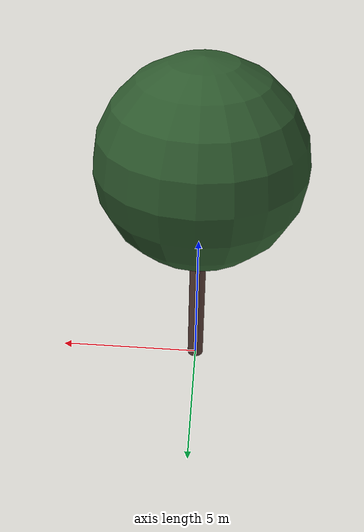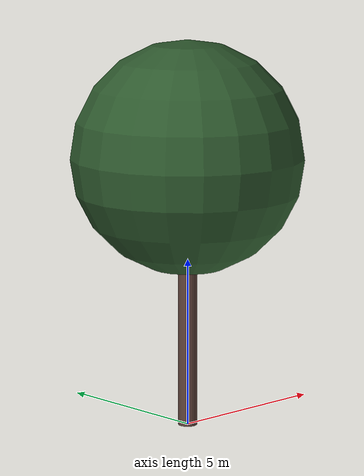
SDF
<?xml version="1.0" ?>
<sdf version="1.10">
  <model name="pin_parasol_07">
    <static>true</static>

    <!-- Tronc -->
    <link name="trunk">
      <pose>0 0 3.4970128896397923 0 0 0</pose>
      <visual name="trunk_visual">
        <geometry>
          <cylinder>
            <radius>0.2789027904036983</radius>
            <length>6.994025779279585</length>
          </cylinder>
        </geometry>
        <material>
          <ambient>0.36 0.25 0.22 1</ambient>
          <diffuse>0.36 0.25 0.22 1</diffuse>
          <specular>0.1 0.1 0.1 1</specular>
        </material>
      </visual>
      <collision name="trunk_collision">
        <geometry>
          <cylinder>
            <radius>0.2789027904036983</radius>
            <length>6.994025779279585</length>
          </cylinder>
        </geometry>
      </collision>
    </link>

    <!-- Feuillage -->
    <link name="crown">
      <pose>0 0 8.024540915750423 0 0 0</pose>
      <visual name="crown_visual">
        <geometry>
          <sphere>
              <radius>3.435050454902797</radius>
            </sphere>
        </geometry>
        <material>
          <ambient>0.18 0.35 0.18 1</ambient>
          <diffuse>0.18 0.35 0.18 1</diffuse>
          <specular>0.1 0.1 0.1 1</specular>
        </material>
      </visual>
      <collision name="crown_collision">
        <geometry>
          <sphere>
            <radius>2.7480403639222377</radius>
          </sphere>
        </geometry>
      </collision>
    </link>

    <!-- Joint tronc-feuillage -->
    <joint name="trunk_crown_joint" type="fixed">
      <parent>trunk</parent>
      <child>crown</child>
    </joint>

  </model>
</sdf>
